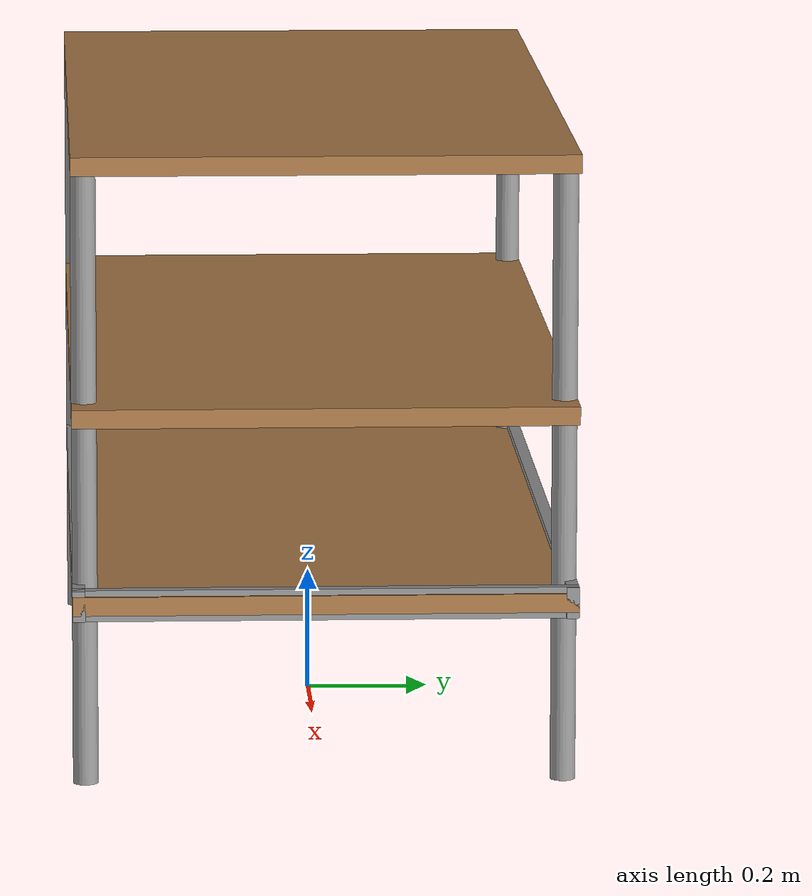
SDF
<?xml version="1.0" ?>
<sdf version="1.5">
    <model name="amazon_warehouse_pallet_old">
        <static>false</static>
        <link name="link">

            <collision name="surface1">
                <pose>0 0 0.3 0 0 0</pose>
                <geometry>
                    <box>
                        <size>1.5 0.8 0.03</size>
                    </box>
                </geometry>
                <surface>
                    <friction>
                        <ode>
                            <mu>Inf</mu>
                            <mu2>Inf</mu2>
                            <slip1>0.0</slip1>
                            <slip2>0.0</slip2>
                        </ode>
                    </friction>
                </surface>
            </collision>
            <visual name="visual1">
                <pose>0 0 0.3 0 0 0</pose>
                <geometry>
                    <box>
                        <size>1.5 0.8 0.03</size>
                    </box>
                </geometry>
                <material>
                    <script>
                        <uri>file://media/materials/scripts/gazebo.material</uri>
                        <name>Gazebo/WoodPallet</name>
                    </script>
                </material>
            </visual>

            <!-- Lets create a Holding angle bracket kind of structure under surface1, so that it could hold the lift plate of the robot.-->

            <collision name="holding1_collision">
                <pose>0 0.39 0.30 0 0 0</pose>
                <geometry>
                    <box>
                        <size>1.5 0.02 0.05</size>
                    </box>
                </geometry>
                <surface>
                    <friction>
                        <ode>
                            <mu>999999999</mu>
                            <mu2>999999999</mu2>
                            <slip1>0.0</slip1>
                            <slip2>0.0</slip2>
                        </ode>
                    </friction>
                </surface>
            </collision>
            <visual name="holding1_visual">
                <pose>0 0.39 0.30 0 0 0</pose>
                <geometry>
                    <box>
                        <size>1.5 0.02 0.05</size>
                    </box>
                </geometry>
                <material>
                    <script>
                        <uri>file://media/materials/scripts/gazebo.material</uri>
                        <name>Gazebo/Grey</name>
                    </script>
                </material>
            </visual>

            <collision name="holding2_collision">
                <pose>0 -0.39 0.30 0 0 0</pose>
                <geometry>
                    <box>
                        <size>1.5 0.02 0.05</size>
                    </box>
                </geometry>
                <surface>
                    <friction>
                        <ode>
                            <mu>999999999</mu>
                            <mu2>999999999</mu2>
                            <slip1>0.0</slip1>
                            <slip2>0.0</slip2>
                        </ode>
                    </friction>
                </surface>
            </collision>
            <visual name="holding2_visual">
                <pose>0 -0.39 0.30 0 0 0</pose>
                <geometry>
                    <box>
                        <size>1.5 0.02 0.05</size>
                    </box>
                </geometry>
                <material>
                    <script>
                        <uri>file://media/materials/scripts/gazebo.material</uri>
                        <name>Gazebo/Grey</name>
                    </script>
                </material>
            </visual>

            <collision name="holding3_collision">
                <pose>0.735 0 0.30 0 0 1.57</pose>
                <geometry>
                    <box>
                        <size>0.8 0.02 0.05</size>
                    </box>
                </geometry>
                <surface>
                    <friction>
                        <ode>
                            <mu>999999999</mu>
                            <mu2>999999999</mu2>
                            <slip1>0.0</slip1>
                            <slip2>0.0</slip2>
                        </ode>
                    </friction>
                </surface>
            </collision>
            <visual name="holding3_visual">
                <pose>0.735 0 0.30 0 0 1.57</pose>
                <geometry>
                    <box>
                        <size>0.8 0.02 0.05</size>
                    </box>
                </geometry>
                <material>
                    <script>
                        <uri>file://media/materials/scripts/gazebo.material</uri>
                        <name>Gazebo/Grey</name>
                    </script>
                </material>
            </visual>

            <collision name="holding4_collision">
                <pose>-0.735 0 0.30 0 0 1.57</pose>
                <geometry>
                    <box>
                        <size>0.8 0.02 0.05</size>
                    </box>
                </geometry>
                <surface>
                    <friction>
                        <ode>
                            <mu>999999999</mu>
                            <mu2>999999999</mu2>
                            <slip1>0.0</slip1>
                            <slip2>0.0</slip2>
                        </ode>
                    </friction>
                </surface>
            </collision>
            <visual name="holding4_visual">
                <pose>-0.735 0 0.30 0 0 1.57</pose>
                <geometry>
                    <box>
                        <size>0.8 0.02 0.05</size>
                    </box>
                </geometry>
                <material>
                    <script>
                        <uri>file://media/materials/scripts/gazebo.material</uri>
                        <name>Gazebo/Grey</name>
                    </script>
                </material>
            </visual>

            <collision name="surface2">
                <pose>0 0 0.6 0 0 0</pose>
                <geometry>
                    <box>
                        <size>1.5 0.8 0.03</size>
                    </box>
                </geometry>
                <surface>
                    <friction>
                        <ode>
                            <mu>2.5</mu>
                            <mu2>2.5</mu2>
                        </ode>
                    </friction>
                </surface>
            </collision>
            <visual name="visual2">
                <pose>0 0 0.6 0 0 0</pose>
                <geometry>
                    <box>
                        <size>1.5 0.8 0.03</size>
                    </box>
                </geometry>
                <material>
                    <script>
                        <uri>file://media/materials/scripts/gazebo.material</uri>
                        <name>Gazebo/WoodPallet</name>
                    </script>
                </material>
            </visual>

            <collision name="surface3">
                <pose>0 0 1.0 0 0 0</pose>
                <geometry>
                    <box>
                        <size>1.5 0.8 0.03</size>
                    </box>
                </geometry>
                <surface>
                    <friction>
                        <ode>
                            <mu>2.5</mu>
                            <mu2>2.5</mu2>
                        </ode>
                    </friction>
                </surface>
            </collision>
            <visual name="visual3">
                <pose>0 0 1.0 0 0 0</pose>
                <geometry>
                    <box>
                        <size>1.5 0.8 0.03</size>
                    </box>
                </geometry>
                <material>
                    <script>
                        <uri>file://media/materials/scripts/gazebo.material</uri>
                        <name>Gazebo/WoodPallet</name>
                    </script>
                </material>
            </visual>

            <collision name="front_left_leg">
                <pose>0.68 0.38 0.5 0 0 0</pose>
                <geometry>
                    <cylinder>
                        <radius>0.02</radius>
                        <length>1.0</length>
                    </cylinder>
                </geometry>
            </collision>
            <visual name="front_left_leg">
                <pose>0.68 0.38 0.5 0 0 0</pose>
                <geometry>
                    <cylinder>
                        <radius>0.02</radius>
                        <length>1.0</length>
                    </cylinder>
                </geometry>
                <material>
                    <script>
                        <uri>file://media/materials/scripts/gazebo.material</uri>
                        <name>Gazebo/Grey</name>
                    </script>
                </material>
            </visual>
            <collision name="front_right_leg">
                <pose>0.68 -0.38 0.5 0 0 0</pose>
                <geometry>
                    <cylinder>
                        <radius>0.02</radius>
                        <length>1.0</length>
                    </cylinder>
                </geometry>
            </collision>
            <visual name="front_right_leg">
                <pose>0.68 -0.38 0.5 0 0 0</pose>
                <geometry>
                    <cylinder>
                        <radius>0.02</radius>
                        <length>1.0</length>
                    </cylinder>
                </geometry>
                <material>
                    <script>
                        <uri>file://media/materials/scripts/gazebo.material</uri>
                        <name>Gazebo/Grey</name>
                    </script>
                </material>
            </visual>
            <collision name="back_right_leg">
                <pose>-0.68 -0.38 0.5 0 0 0</pose>
                <geometry>
                    <cylinder>
                        <radius>0.02</radius>
                        <length>1.0</length>
                    </cylinder>
                </geometry>
            </collision>
            <visual name="back_right_leg">
                <pose>-0.68 -0.38 0.5 0 0 0</pose>
                <geometry>
                    <cylinder>
                        <radius>0.02</radius>
                        <length>1.0</length>
                    </cylinder>
                </geometry>
                <material>
                    <script>
                        <uri>file://media/materials/scripts/gazebo.material</uri>
                        <name>Gazebo/Grey</name>
                    </script>
                </material>
            </visual>
            <collision name="back_left_leg">
                <pose>-0.68 0.38 0.5 0 0 0</pose>
                <geometry>
                    <cylinder>
                        <radius>0.02</radius>
                        <length>1.0</length>
                    </cylinder>
                </geometry>
            </collision>
            <visual name="back_left_leg">
                <pose>-0.68 0.38 0.5 0 0 0</pose>
                <geometry>
                    <cylinder>
                        <radius>0.02</radius>
                        <length>1.0</length>
                    </cylinder>
                </geometry>
                <material>
                    <script>
                        <uri>file://media/materials/scripts/gazebo.material</uri>
                        <name>Gazebo/Grey</name>
                    </script>
                </material>
            </visual>
        </link>
    </model>
</sdf>
